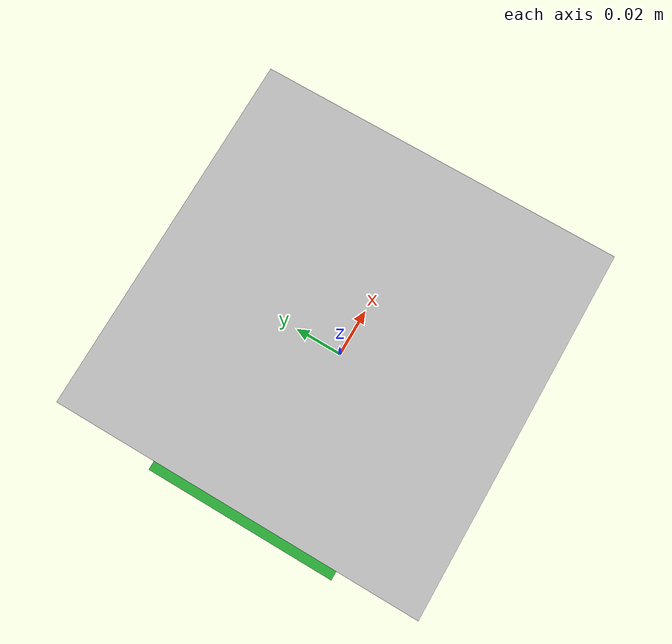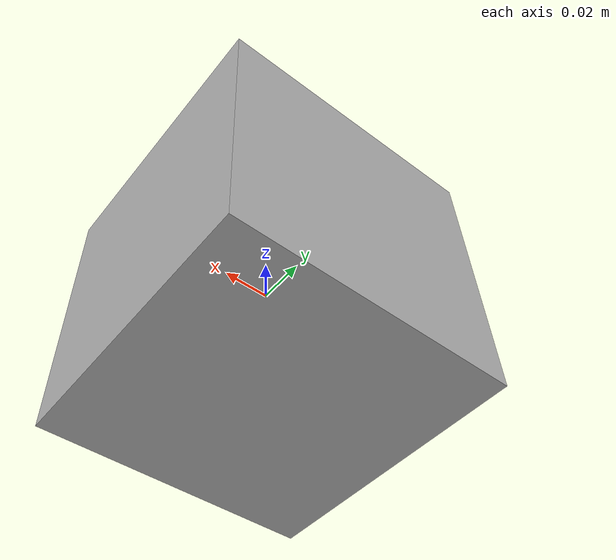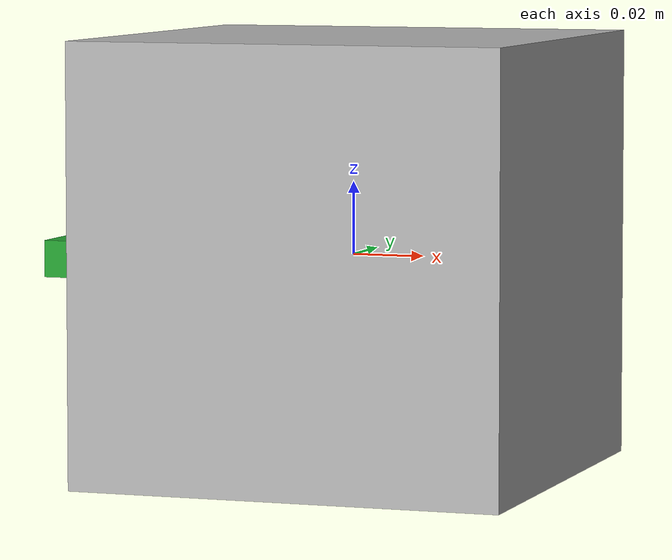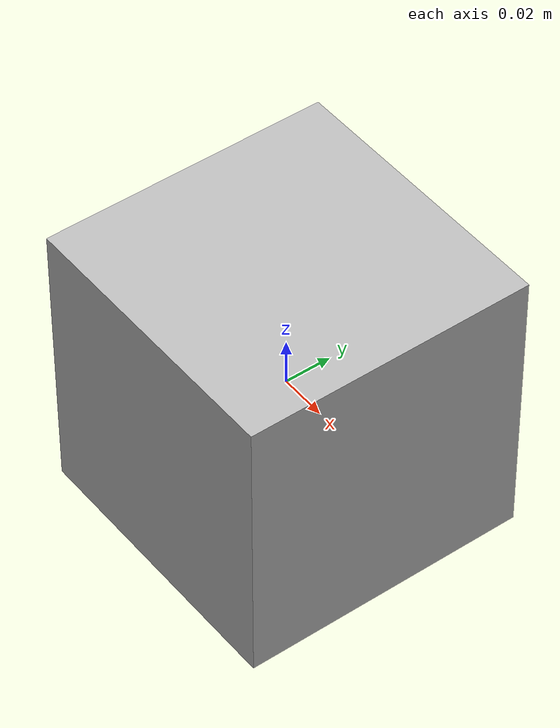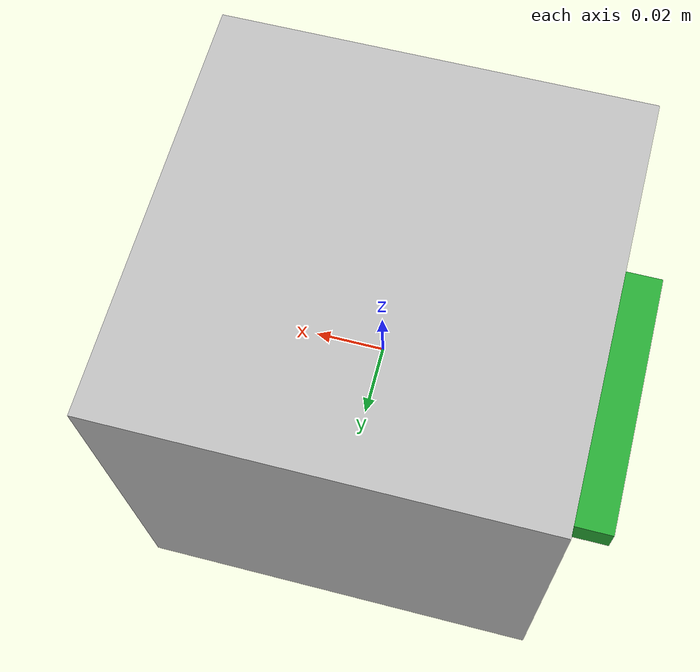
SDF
<?xml version="1.0"?>
<sdf version="1.6">
  <model name="box_banana">
    <link name="box_banana_link">
      <inertial>
        <mass>1</mass>
        <inertia>
          <ixx>0.166667</ixx>
          <ixy>0</ixy>
          <ixz>0</ixz>
          <iyy>0.166667</iyy>
          <iyz>0</iyz>
          <izz>0.166667</izz>
        </inertia>
      </inertial>
      <self_collide>0</self_collide>
      <enable_wind>0</enable_wind>
      <kinematic>0</kinematic>
      <collision name="box_banana_collision">
        <geometry>
          <box>
            <size>0.12 0.12 0.12</size>
          </box>
        </geometry>
      </collision>
      <visual name="box_banana_visual">
        <geometry>
          <box>
            <size>0.12 0.12 0.12</size>
          </box>
        </geometry>
	<material>
	  <script>
            <uri>model://banana_box/materials/scripts</uri>
	    <uri>model://banana_box/materials/textures</uri>
	    <name>banana_box</name>
          </script>
	</material>
      </visual>

      <collision name="box_holder">
        <pose>-0.06 0.0 0.00 0 0 0</pose>
        <geometry>
          <box>
            <size>0.03 0.08 0.01</size>
          </box>
        </geometry>
      </collision>
      <visual name="box_holder">
        <pose>-0.06 0.0 0.00 0 0 0</pose>
        <geometry>
          <box>
            <size>0.03 0.08 0.01</size>
          </box>
        </geometry>
        <material>
          <script>
            <uri>file://media/materials/scripts/gazebo.material</uri>
            <name>Gazebo/Green</name>
          </script>
        </material>
      </visual>

    </link>
    <static>0</static>
  </model>
</sdf>
